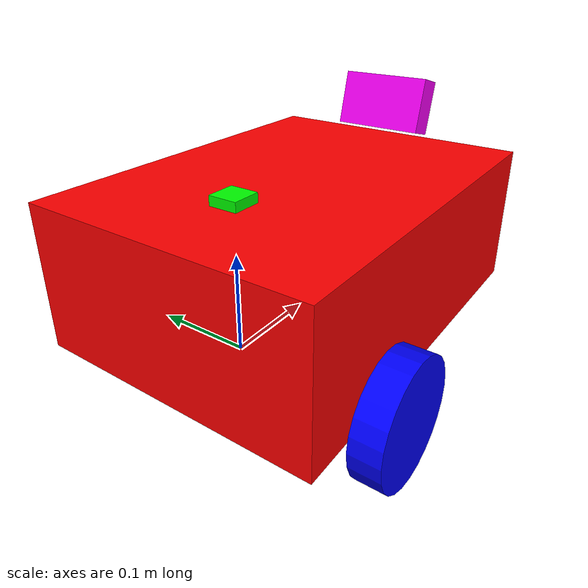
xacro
<?xml version="1.0"?>
<robot name="diff_robot" xmlns:xacro="http://www.ros.org/wiki/xacro">

  <!-- Includes -->
  <xacro:include filename="$(find my_robot)/urdf/frame.xacro"/>
  <xacro:include filename="$(find my_robot)/urdf/wheels.xacro"/>
  <xacro:include filename="$(find my_robot)/urdf/sensors.xacro"/>

  <!-- Robot body -->
  <xacro:my_robot_frame
    base_length="0.4"
    base_width="0.3"
    base_height="0.15"
    base_mass="4.0"/>

  <!-- Wheels -->
  <xacro:drive_wheel
    wheel_name="left_wheel_link"
    joint_name="left_wheel_joint"
    y_pos="0.17"
    joint_rpy="-1.57"
    wheel_radius="0.06"
    wheel_width="0.03"
    wheel_mass="1.0"/>

  <xacro:drive_wheel
    wheel_name="right_wheel_link"
    joint_name="right_wheel_joint"
    y_pos="-0.17"
    joint_rpy="1.57"
    wheel_radius="0.06"
    wheel_width="0.03"
    wheel_mass="1.0"/>

  <xacro:caster_wheel
    caster_radius="0.06"
    caster_mass="1e-5"
    caster_x="0.2"/>

  <!-- Sensors -->
  <xacro:camera_sensor
    cam_x="0.28"
    cam_y="0.0"
    cam_z="0.19"
    cam_roll="0.0"
    cam_pitch="0.26"
    cam_yaw="0.0"/>

  <xacro:imu_sensor_unit
    imu_x="0.1"
    imu_y="0.0"
    imu_z="0.15"/>

  <!-- Global Gazebo plugins -->
  <gazebo>
    <plugin filename="gz-sim-diff-drive-system" name="gz::sim::systems::DiffDrive">
      <left_joint>left_wheel_joint</left_joint>
      <right_joint>right_wheel_joint</right_joint>
      <wheel_separation>0.34</wheel_separation>
      <wheel_radius>0.06</wheel_radius>
      <topic>/cmd_vel</topic>
    </plugin>

    <plugin filename="gz-sim-joint-state-publisher-system" name="gz::sim::systems::JointStatePublisher"/>

    <plugin filename="gz-sim-sensors-system" name="gz::sim::systems::Sensors">
      <render_engine>ogre2</render_engine>
    </plugin>

    <plugin filename="gz-sim-imu-system" name="gz::sim::systems::Imu"/>
  </gazebo>

</robot>

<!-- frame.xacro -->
<robot xmlns:xacro="http://www.ros.org/wiki/xacro">

  <xacro:macro name="my_robot_frame" params="
    base_length:=0.4
    base_width:=0.3
    base_height:=0.15
    base_mass:=4.0">

    <link name="base_link"/>

    <joint name="base_joint" type="fixed">
      <parent link="base_link"/>
      <child link="frame_link"/>
      <origin xyz="-0.1 0 0" rpy="0 0 0"/>
    </joint>

    <link name="frame_link">
      <visual>
        <origin xyz="${base_length/2.0} 0 ${base_height/2.0}" rpy="0 0 0"/>
        <geometry>
          <box size="${base_length} ${base_width} ${base_height}"/>
        </geometry>
        <material name="red">
          <color rgba="1.0 0.0 0.0 1.0"/>
        </material>
      </visual>

      <collision>
        <origin xyz="${base_length/2.0} 0 ${base_height/2.0}" rpy="0 0 0"/>
        <geometry>
          <box size="${base_length} ${base_width} ${base_height}"/>
        </geometry>
      </collision>

      <inertial>
        <mass value="${base_mass}"/>
        <origin xyz="${base_length/2.0} 0 ${base_height/2.0}" rpy="0 0 0"/>
        <inertia ixx="0.1" ixy="0.0" ixz="0.0"
                 iyy="0.1" iyz="0.0"
                 izz="0.1"/>
      </inertial>
    </link>

  </xacro:macro>

</robot>

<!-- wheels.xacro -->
<robot xmlns:xacro="http://www.ros.org/wiki/xacro">

  <xacro:macro name="drive_wheel" params="
    wheel_name
    joint_name
    y_pos
    joint_rpy
    wheel_radius:=0.06
    wheel_width:=0.03
    wheel_mass:=1.0">

    <joint name="${joint_name}" type="continuous">
      <parent link="base_link"/>
      <child link="${wheel_name}"/>
      <origin xyz="0 ${y_pos} 0" rpy="${joint_rpy} 0 0"/>
      <axis xyz="0 0 1"/>
    </joint>

    <link name="${wheel_name}">
      <visual>
        <geometry>
          <cylinder radius="${wheel_radius}" length="${wheel_width}"/>
        </geometry>
        <origin xyz="0 0 0" rpy="0 0 0"/>
        <material name="blue">
          <color rgba="0.0 0.0 1.0 1.0"/>
        </material>
      </visual>

      <collision>
        <geometry>
          <cylinder radius="${wheel_radius}" length="${wheel_width}"/>
        </geometry>
        <origin xyz="0 0 0" rpy="0 0 0"/>
      </collision>

      <inertial>
        <mass value="${wheel_mass}"/>
        <origin xyz="0 0 0" rpy="0 0 0"/>
        <inertia ixx="0.1" ixy="0.0" ixz="0.0"
                 iyy="0.1" iyz="0.0"
                 izz="0.1"/>
      </inertial>
    </link>

  </xacro:macro>

  <xacro:macro name="caster_wheel" params="
    caster_radius:=0.06
    caster_mass:=1e-5
    caster_x:=0.2">

    <joint name="caster_joint" type="fixed">
      <parent link="base_link"/>
      <child link="caster_link"/>
      <origin xyz="${caster_x} 0 0" rpy="0 0 0"/>
    </joint>

    <link name="caster_link">
      <visual>
        <geometry>
          <sphere radius="${caster_radius}"/>
        </geometry>
        <material name="yellow">
          <color rgba="1.0 1.0 0.0 1.0"/>
        </material>
      </visual>

      <collision>
        <geometry>
          <sphere radius="${caster_radius}"/>
        </geometry>
      </collision>

      <inertial>
        <mass value="${caster_mass}"/>
        <inertia ixx="1e-6" ixy="0" ixz="0"
                 iyy="1e-6" iyz="0"
                 izz="1e-6"/>
      </inertial>
    </link>

  </xacro:macro>

</robot>

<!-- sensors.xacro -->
<robot xmlns:xacro="http://www.ros.org/wiki/xacro">

  <xacro:macro name="camera_sensor" params="
    cam_x:=0.28
    cam_y:=0.0
    cam_z:=0.19
    cam_roll:=0.0
    cam_pitch:=0.26
    cam_yaw:=0.0">

    <joint name="camera_joint" type="fixed">
      <parent link="base_link"/>
      <child link="camera_link"/>
      <origin xyz="${cam_x} ${cam_y} ${cam_z}" rpy="${cam_roll} ${cam_pitch} ${cam_yaw}"/>
    </joint>

    <link name="camera_link">
      <visual>
        <geometry>
          <box size="0.03 0.1 0.06"/>
        </geometry>
        <material name="Purple">
          <color rgba="1.0 0.0 1.0 1.0"/>
        </material>
      </visual>

      <collision>
        <geometry>
          <box size="0.03 0.1 0.06"/>
        </geometry>
      </collision>

      <inertial>
        <mass value="1e-5"/>
        <inertia ixx="1e-6" ixy="0" ixz="0"
                 iyy="1e-6" iyz="0"
                 izz="1e-6"/>
      </inertial>
    </link>

    <gazebo reference="camera_link">
      <sensor type="camera" name="camera1">
        <update_rate>30.0</update_rate>
        <topic>camera/image_raw</topic>
        <gz_frame_id>camera_link</gz_frame_id>
        <camera>
          <horizontal_fov>1.3962634</horizontal_fov>
          <image>
            <width>800</width>
            <height>800</height>
          </image>
          <clip>
            <near>0.02</near>
            <far>300</far>
          </clip>
        </camera>
      </sensor>
    </gazebo>

  </xacro:macro>

  <xacro:macro name="imu_sensor_unit" params="
    imu_x:=0.1
    imu_y:=0.0
    imu_z:=0.15">

    <joint name="imu_joint" type="fixed">
      <parent link="frame_link"/>
      <child link="imu_link"/>
      <origin xyz="${imu_x} ${imu_y} ${imu_z}" rpy="0 0 0"/>
    </joint>

    <link name="imu_link">
      <inertial>
        <origin xyz="0 0 0" rpy="0 0 0"/>
        <mass value="0.05"/>
        <inertia ixx="0.00001" ixy="0.0" ixz="0.0"
                 iyy="0.00001" iyz="0.0"
                 izz="0.00001"/>
      </inertial>

      <visual>
        <origin xyz="0 0 0" rpy="0 0 0"/>
        <geometry>
          <box size="0.03 0.03 0.02"/>
        </geometry>
        <material name="green">
          <color rgba="0.0 1.0 0.0 1.0"/>
        </material>
      </visual>

      <collision>
        <origin xyz="0 0 0" rpy="0 0 0"/>
        <geometry>
          <box size="0.03 0.03 0.02"/>
        </geometry>
      </collision>
    </link>

    <gazebo reference="imu_link">
      <sensor name="imu_sensor" type="imu">
        <always_on>1</always_on>
        <update_rate>50</update_rate>
        <visualize>true</visualize>
        <topic>imu</topic>

        <imu>
          <angular_velocity>
            <x>
              <noise type="gaussian">
                <mean>0.0</mean>
                <stddev>0.0002</stddev>
              </noise>
            </x>
            <y>
              <noise type="gaussian">
                <mean>0.0</mean>
                <stddev>0.0002</stddev>
              </noise>
            </y>
            <z>
              <noise type="gaussian">
                <mean>0.0</mean>
                <stddev>0.0002</stddev>
              </noise>
            </z>
          </angular_velocity>

          <linear_acceleration>
            <x>
              <noise type="gaussian">
                <mean>0.0</mean>
                <stddev>0.017</stddev>
              </noise>
            </x>
            <y>
              <noise type="gaussian">
                <mean>0.0</mean>
                <stddev>0.017</stddev>
              </noise>
            </y>
            <z>
              <noise type="gaussian">
                <mean>0.0</mean>
                <stddev>0.017</stddev>
              </noise>
            </z>
          </linear_acceleration>
        </imu>
      </sensor>
    </gazebo>

  </xacro:macro>

</robot>
